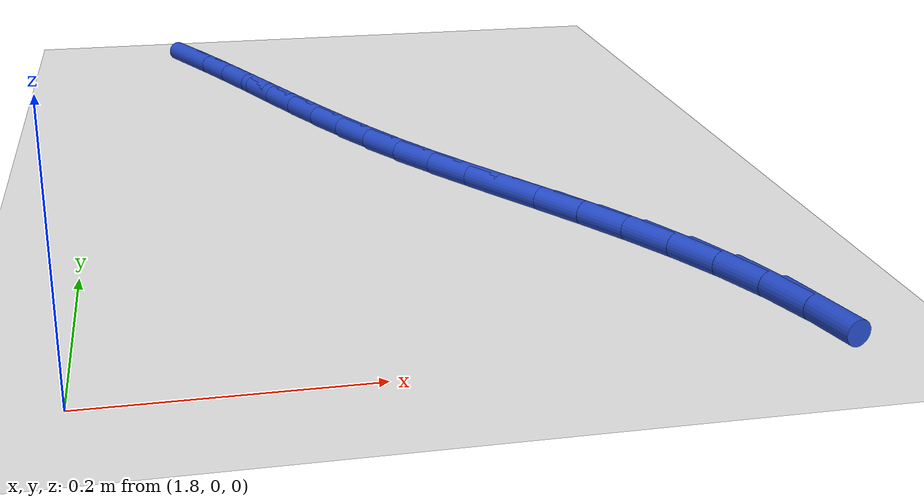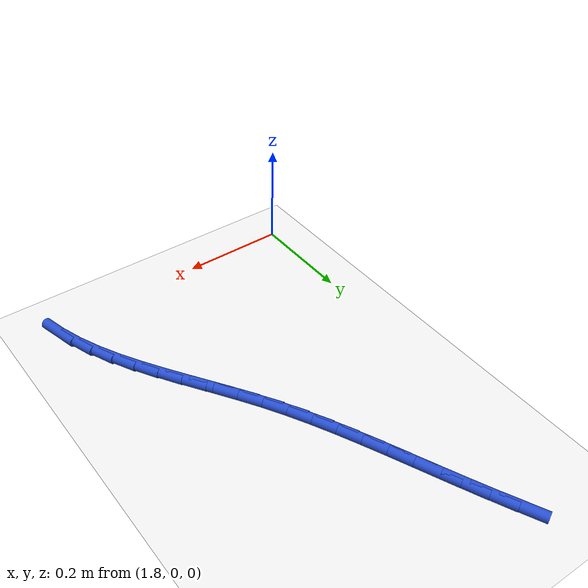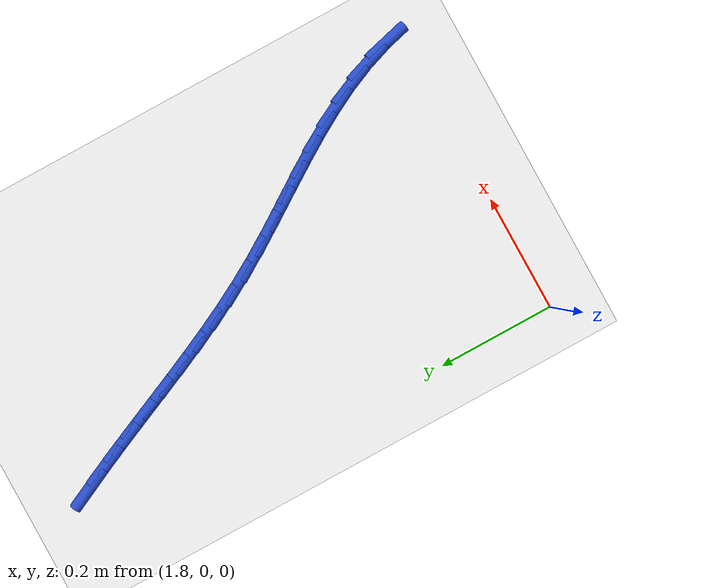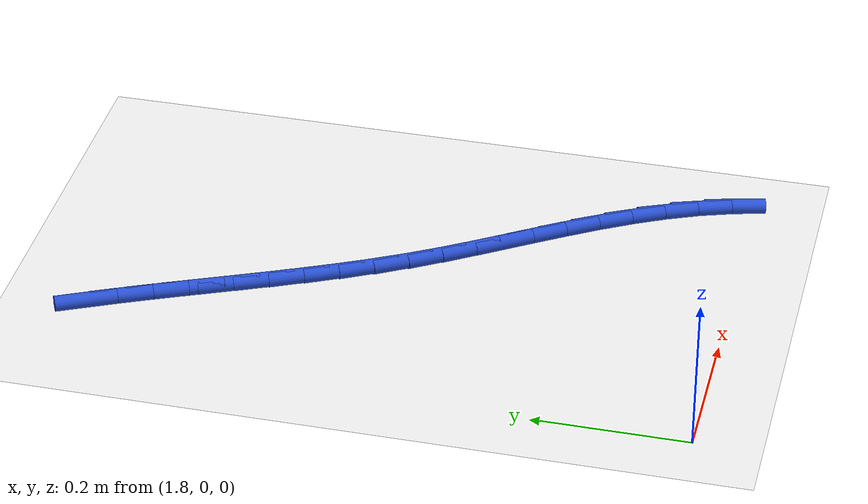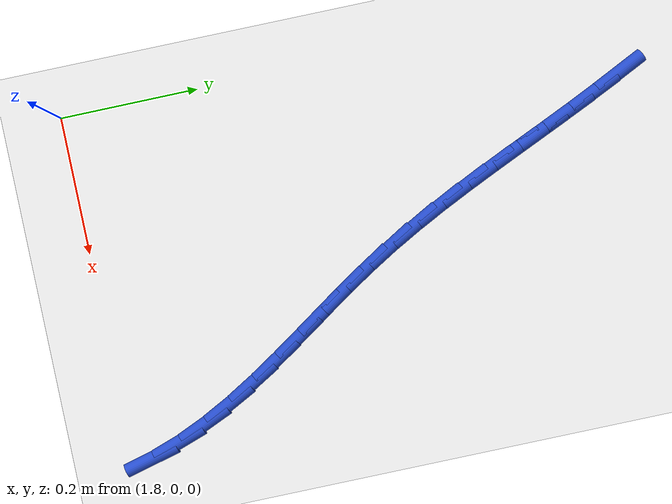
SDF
<sdf version="1.6">
 <world name="default">
  <model name="ground_plane">
   <static>1</static>
   <link name="link">
    <collision name="collision">
     <geometry><plane><normal>0 0 1</normal><size>100 100</size></plane></geometry>
     <surface><friction><ode><mu>100</mu><mu2>50</mu2></ode></friction></surface>
    </collision>
    <visual name="visual">
     <cast_shadows>0</cast_shadows>
     <geometry><plane><normal>0 0 1</normal><size>100 100</size></plane></geometry>
     <material>
      <script><uri>file://media/materials/scripts/gazebo.material</uri><name>Gazebo/WhiteGlow</name></script>
     </material>
    </visual>
   </link>
  </model>
  <model name="line">
   <link name="link_59">
    <pose>1.9030772525813238 0.7958345627596506 0.01 0 1.57 -1.1206374326432522</pose>
    <collision name="collision">
     <geometry><cylinder><radius>0.01</radius><length>0.08</length></cylinder></geometry>
    </collision>
    <visual name="visual">
     <material>
      <script><name>Gazebo/Blue</name><uri>file://media/materials/scripts/gazebo.material</uri></script>
     </material>
     <geometry><cylinder><radius>0.01</radius><length>0.08</length></cylinder></geometry>
    </visual>
   </link>
   <link name="link_60">
    <pose>1.9230269449420407 0.7545523093680802 0.01 0 1.57 -1.1385776247088553</pose>
    <collision name="collision">
     <geometry><cylinder><radius>0.01</radius><length>0.08</length></cylinder></geometry>
    </collision>
    <visual name="visual">
     <material>
      <script><name>Gazebo/Blue</name><uri>file://media/materials/scripts/gazebo.material</uri></script>
     </material>
     <geometry><cylinder><radius>0.01</radius><length>0.08</length></cylinder></geometry>
    </visual>
   </link>
   <link name="link_61">
    <pose>1.9421794825952112 0.7130345150685208 0.01 0 1.57 -1.1498167082078252</pose>
    <collision name="collision">
     <geometry><cylinder><radius>0.01</radius><length>0.08</length></cylinder></geometry>
    </collision>
    <visual name="visual">
     <material>
      <script><name>Gazebo/Blue</name><uri>file://media/materials/scripts/gazebo.material</uri></script>
     </material>
     <geometry><cylinder><radius>0.01</radius><length>0.08</length></cylinder></geometry>
    </visual>
   </link>
   <link name="link_62">
    <pose>1.9608257021310094 0.6713900682149909 0.01 0 1.57 -1.1542930377490592</pose>
    <collision name="collision">
     <geometry><cylinder><radius>0.01</radius><length>0.08</length></cylinder></geometry>
    </collision>
    <visual name="visual">
     <material>
      <script><name>Gazebo/Blue</name><uri>file://media/materials/scripts/gazebo.material</uri></script>
     </material>
     <geometry><cylinder><radius>0.01</radius><length>0.08</length></cylinder></geometry>
    </visual>
   </link>
   <link name="link_63">
    <pose>1.9792564401396116 0.6297278571615079 0.01 0 1.57 -1.1519684460144604</pose>
    <collision name="collision">
     <geometry><cylinder><radius>0.01</radius><length>0.08</length></cylinder></geometry>
    </collision>
    <visual name="visual">
     <material>
      <script><name>Gazebo/Blue</name><uri>file://media/materials/scripts/gazebo.material</uri></script>
     </material>
     <geometry><cylinder><radius>0.01</radius><length>0.08</length></cylinder></geometry>
    </visual>
   </link>
   <link name="link_64">
    <pose>1.9977625332111926 0.5881567702620903 0.01 0 1.57 -1.142822453347083</pose>
    <collision name="collision">
     <geometry><cylinder><radius>0.01</radius><length>0.08</length></cylinder></geometry>
    </collision>
    <visual name="visual">
     <material>
      <script><name>Gazebo/Blue</name><uri>file://media/materials/scripts/gazebo.material</uri></script>
     </material>
     <geometry><cylinder><radius>0.01</radius><length>0.08</length></cylinder></geometry>
    </visual>
   </link>
   <link name="link_65">
    <pose>2.016634817935927 0.5467856958707554 0.01 0 1.57 -1.1268557132546373</pose>
    <collision name="collision">
     <geometry><cylinder><radius>0.01</radius><length>0.08</length></cylinder></geometry>
    </collision>
    <visual name="visual">
     <material>
      <script><name>Gazebo/Blue</name><uri>file://media/materials/scripts/gazebo.material</uri></script>
     </material>
     <geometry><cylinder><radius>0.01</radius><length>0.08</length></cylinder></geometry>
    </visual>
   </link>
   <link name="link_66">
    <pose>2.03616413090399 0.5057235223415211 0.01 0 1.57 -1.1041028036911467</pose>
    <collision name="collision">
     <geometry><cylinder><radius>0.01</radius><length>0.08</length></cylinder></geometry>
    </collision>
    <visual name="visual">
     <material>
      <script><name>Gazebo/Blue</name><uri>file://media/materials/scripts/gazebo.material</uri></script>
     </material>
     <geometry><cylinder><radius>0.01</radius><length>0.08</length></cylinder></geometry>
    </visual>
   </link>
   <link name="link_67">
    <pose>2.056641308705558 0.4650791380284058 0.01 0 1.57 -1.0746539343591226</pose>
    <collision name="collision">
     <geometry><cylinder><radius>0.01</radius><length>0.08</length></cylinder></geometry>
    </collision>
    <visual name="visual">
     <material>
      <script><name>Gazebo/Blue</name><uri>file://media/materials/scripts/gazebo.material</uri></script>
     </material>
     <geometry><cylinder><radius>0.01</radius><length>0.08</length></cylinder></geometry>
    </visual>
   </link>
   <link name="link_68">
    <pose>2.0783571879308047 0.4249614312854266 0.01 0 1.57 -1.0388643337372512</pose>
    <collision name="collision">
     <geometry><cylinder><radius>0.01</radius><length>0.08</length></cylinder></geometry>
    </collision>
    <visual name="visual">
     <material>
      <script><name>Gazebo/Blue</name><uri>file://media/materials/scripts/gazebo.material</uri></script>
     </material>
     <geometry><cylinder><radius>0.01</radius><length>0.08</length></cylinder></geometry>
    </visual>
   </link>
   <link name="link_69">
    <pose>2.10159482177263 0.38547624244021034 0.01 0 1.57 -1.005188417917236</pose>
    <collision name="collision">
     <geometry><cylinder><radius>0.01</radius><length>0.08</length></cylinder></geometry>
    </collision>
    <visual name="visual">
     <material>
      <script><name>Gazebo/Blue</name><uri>file://media/materials/scripts/gazebo.material</uri></script>
     </material>
     <geometry><cylinder><radius>0.01</radius><length>0.08</length></cylinder></geometry>
    </visual>
   </link>
   <link name="link_70">
    <pose>2.126279766970009 0.34658941400349647 0.01 0 1.57 -0.984949922145394</pose>
    <collision name="collision">
     <geometry><cylinder><radius>0.01</radius><length>0.08</length></cylinder></geometry>
    </collision>
    <visual name="visual">
     <material>
      <script><name>Gazebo/Blue</name><uri>file://media/materials/scripts/gazebo.material</uri></script>
     </material>
     <geometry><cylinder><radius>0.01</radius><length>0.08</length></cylinder></geometry>
    </visual>
   </link>
   <link name="link_71">
    <pose>2.151838647935099 0.30807140350874235 0.01 0 1.57 -0.978713715411996</pose>
    <collision name="collision">
     <geometry><cylinder><radius>0.01</radius><length>0.08</length></cylinder></geometry>
    </collision>
    <visual name="visual">
     <material>
      <script><name>Gazebo/Blue</name><uri>file://media/materials/scripts/gazebo.material</uri></script>
     </material>
     <geometry><cylinder><radius>0.01</radius><length>0.08</length></cylinder></geometry>
    </visual>
   </link>
   <link name="link_72">
    <pose>2.1776610294827132 0.26967815572245235 0.01 0 1.57 -0.9863899905767575</pose>
    <collision name="collision">
     <geometry><cylinder><radius>0.01</radius><length>0.08</length></cylinder></geometry>
    </collision>
    <visual name="visual">
     <material>
      <script><name>Gazebo/Blue</name><uri>file://media/materials/scripts/gazebo.material</uri></script>
     </material>
     <geometry><cylinder><radius>0.01</radius><length>0.08</length></cylinder></geometry>
    </visual>
   </link>
   <link name="link_73">
    <pose>2.2031364764276673 0.2311656154111296 0.01 0 1.57 -1.008126030425088</pose>
    <collision name="collision">
     <geometry><cylinder><radius>0.01</radius><length>0.08</length></cylinder></geometry>
    </collision>
    <visual name="visual">
     <material>
      <script><name>Gazebo/Blue</name><uri>file://media/materials/scripts/gazebo.material</uri></script>
     </material>
     <geometry><cylinder><radius>0.01</radius><length>0.08</length></cylinder></geometry>
    </visual>
   </link>
   <link name="link_74">
    <pose>2.227654553584773 0.19228972734127844 0.01 0 1.57 -1.0442661581170414</pose>
    <collision name="collision">
     <geometry><cylinder><radius>0.01</radius><length>0.08</length></cylinder></geometry>
    </collision>
    <visual name="visual">
     <material>
      <script><name>Gazebo/Blue</name><uri>file://media/materials/scripts/gazebo.material</uri></script>
     </material>
     <geometry><cylinder><radius>0.01</radius><length>0.08</length></cylinder></geometry>
    </visual>
   </link>
   <link name="link_75">
    <pose>2.250604825768847 0.15280643627940232 0.01 0 1.57 -1.095227984009506</pose>
    <collision name="collision">
     <geometry><cylinder><radius>0.01</radius><length>0.08</length></cylinder></geometry>
    </collision>
    <visual name="visual">
     <material>
      <script><name>Gazebo/Blue</name><uri>file://media/materials/scripts/gazebo.material</uri></script>
     </material>
     <geometry><cylinder><radius>0.01</radius><length>0.08</length></cylinder></geometry>
    </visual>
   </link>
   <link name="link_76">
    <pose>2.2713768577947024 0.11247168699200452 0.01 0 1.57 -1.1612740941962623</pose>
    <collision name="collision">
     <geometry><cylinder><radius>0.01</radius><length>0.08</length></cylinder></geometry>
    </collision>
    <visual name="visual">
     <material>
      <script><name>Gazebo/Blue</name><uri>file://media/materials/scripts/gazebo.material</uri></script>
     </material>
     <geometry><cylinder><radius>0.01</radius><length>0.08</length></cylinder></geometry>
    </visual>
   </link>
   <link name="link_77">
    <pose>2.2893602144771537 0.07104142424558949 0.01 0 1.57 -1.2399183782324792</pose>
    <collision name="collision">
     <geometry><cylinder><radius>0.01</radius><length>0.08</length></cylinder></geometry>
    </collision>
    <visual name="visual">
     <material>
      <script><name>Gazebo/Blue</name><uri>file://media/materials/scripts/gazebo.material</uri></script>
     </material>
     <geometry><cylinder><radius>0.01</radius><length>0.08</length></cylinder></geometry>
    </visual>
   </link>
   <link name="link_78">
    <pose>2.304032964202529 0.028326756079102868 0.01 0 1.57 -1.3189186228771146</pose>
    <collision name="collision">
     <geometry><cylinder><radius>0.01</radius><length>0.08</length></cylinder></geometry>
    </collision>
    <visual name="visual">
     <material>
      <script><name>Gazebo/Blue</name><uri>file://media/materials/scripts/gazebo.material</uri></script>
     </material>
     <geometry><cylinder><radius>0.01</radius><length>0.08</length></cylinder></geometry>
    </visual>
   </link>
  </model>
 </world>
</sdf>
